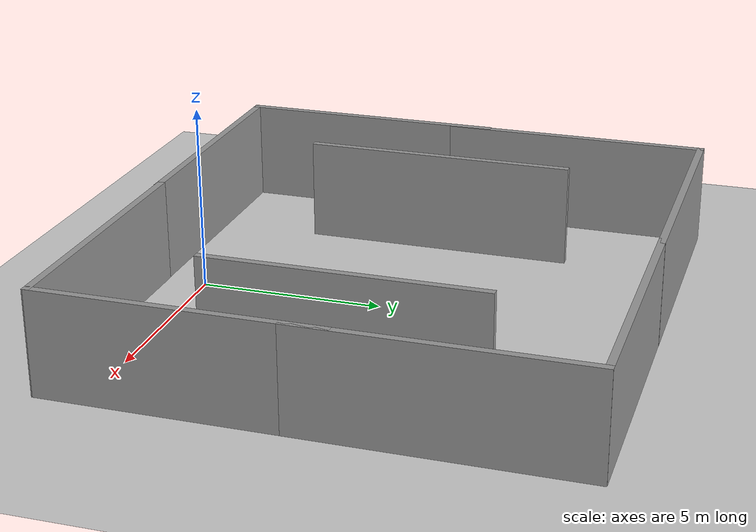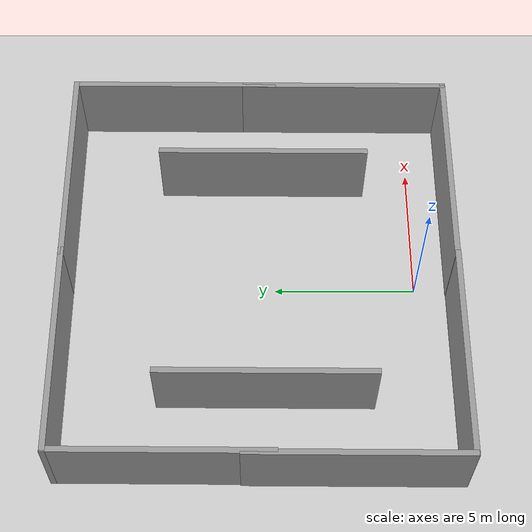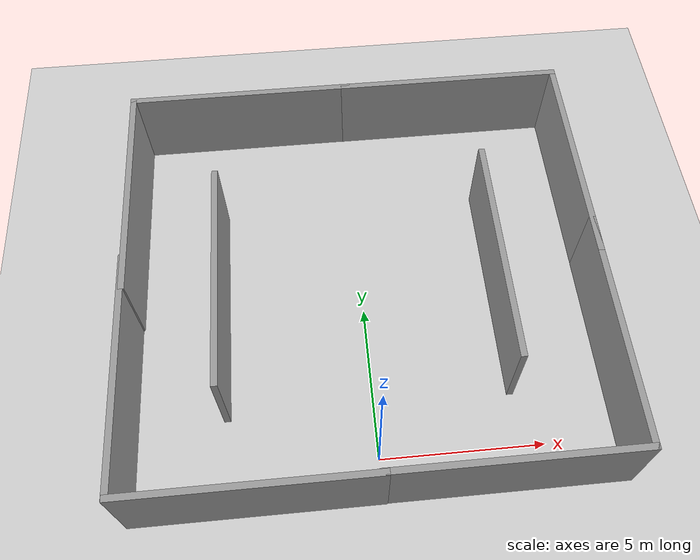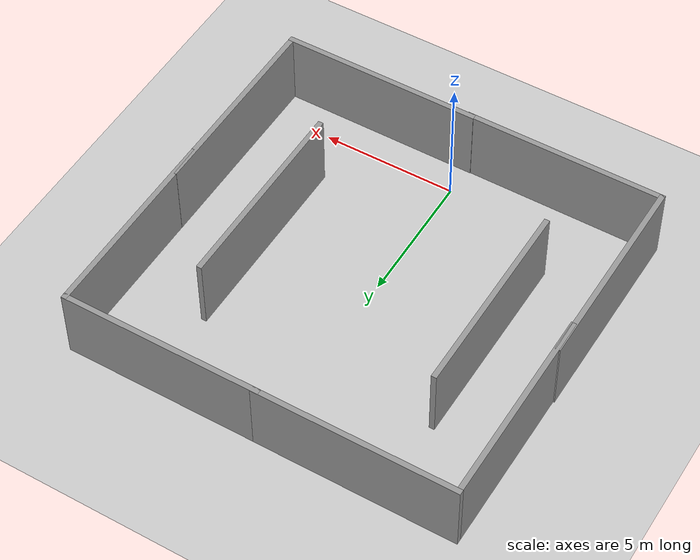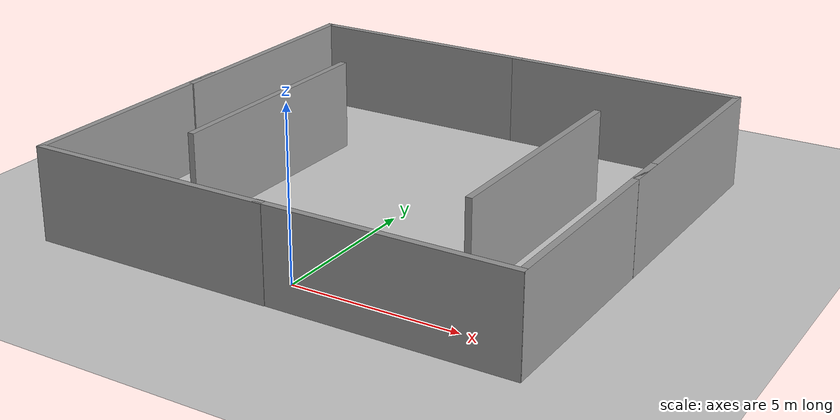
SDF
<sdf version="1.6">
 <world name="default">
  <light name="sun" type="directional">
   <pose>0 0 10 0 -0 0</pose>
   <diffuse>0.8 0.8 0.8 1</diffuse>
   <specular>0.2 0.2 0.2 1</specular>
   <attenuation>
    <range>1000</range>
    <constant>0.9</constant>
    <linear>0.01</linear>
    <quadratic>0.001</quadratic>
   </attenuation>
   <direction>-0.5 0.1 -0.9</direction>
  </light>
  <model name="ground_plane">
   <static>1</static>
   <link name="link">
    <collision name="collision">
     <geometry><plane><normal>0 0 1</normal><size>100 100</size></plane></geometry>
     <surface>
      <contact><collide_bitmask>65535</collide_bitmask></contact>
      <friction><ode><mu>100</mu><mu2>50</mu2></ode></friction>
     </surface>
    </collision>
    <visual name="visual">
     <cast_shadows>0</cast_shadows>
     <geometry><plane><normal>0 0 1</normal><size>100 100</size></plane></geometry>
     <material>
      <script><uri>file://media/materials/scripts/gazebo.material</uri><name>Gazebo/Grey</name></script>
     </material>
    </visual>
   </link>
  </model>
  <gravity>0 0 -9.8</gravity>
  <magnetic_field>6e-06 2.3e-05 -4.2e-05</magnetic_field>
  <atmosphere type="adiabatic"/>
  <physics name="default_physics" default="0" type="ode">
   <max_step_size>0.001</max_step_size>
   <real_time_factor>1</real_time_factor>
   <real_time_update_rate>1000</real_time_update_rate>
  </physics>
  <scene><ambient>0.4 0.4 0.4 1</ambient><background>0.7 0.7 0.7 1</background><shadows>1</shadows></scene>
  <spherical_coordinates>
   <surface_model>EARTH_WGS84</surface_model>
   <latitude_deg>0</latitude_deg>
   <longitude_deg>0</longitude_deg>
   <elevation>0</elevation>
   <heading_deg>0</heading_deg>
  </spherical_coordinates>
  <model name="grey_wall">
   <static>1</static>
   <link name="link">
    <pose>0 0 1.4 0 -0 0</pose>
    <collision name="collision"><geometry><box><size>7.5 0.2 2.8</size></box></geometry></collision>
    <visual name="visual">
     <cast_shadows>0</cast_shadows>
     <geometry><box><size>7.5 0.2 2.8</size></box></geometry>
     <material>
      <script>
       <uri>model://grey_wall/materials/scripts</uri>
       <uri>model://grey_wall/materials/textures</uri>
       <name>vrc/grey_wall</name>
      </script>
     </material>
    </visual>
   </link>
   <pose>-3.64971 -1.23578 0 0 -0 0</pose>
  </model>
  <model name="grey_wall_0">
   <static>1</static>
   <link name="link">
    <pose>0 0 1.4 0 -0 0</pose>
    <collision name="collision"><geometry><box><size>7.5 0.2 2.8</size></box></geometry></collision>
    <visual name="visual">
     <cast_shadows>0</cast_shadows>
     <geometry><box><size>7.5 0.2 2.8</size></box></geometry>
     <material>
      <script>
       <uri>model://grey_wall/materials/scripts</uri>
       <uri>model://grey_wall/materials/textures</uri>
       <name>vrc/grey_wall</name>
      </script>
     </material>
    </visual>
   </link>
   <pose>3.57651 -1.2198 0 0 -0 0</pose>
  </model>
  <model name="grey_wall_1">
   <static>1</static>
   <link name="link">
    <pose>0 0 1.4 0 -0 0</pose>
    <collision name="collision"><geometry><box><size>7.5 0.2 2.8</size></box></geometry></collision>
    <visual name="visual">
     <cast_shadows>0</cast_shadows>
     <geometry><box><size>7.5 0.2 2.8</size></box></geometry>
     <material>
      <script>
       <uri>model://grey_wall/materials/scripts</uri>
       <uri>model://grey_wall/materials/textures</uri>
       <name>vrc/grey_wall</name>
      </script>
     </material>
    </visual>
   </link>
   <pose>-7.2877 2.43127 0 0 0 -1.57646</pose>
  </model>
  <model name="grey_wall_1_clone">
   <static>1</static>
   <link name="link">
    <pose>0 0 1.4 0 -0 0</pose>
    <collision name="collision"><geometry><box><size>7.5 0.2 2.8</size></box></geometry></collision>
    <visual name="visual">
     <cast_shadows>0</cast_shadows>
     <geometry><box><size>7.5 0.2 2.8</size></box></geometry>
     <material>
      <script>
       <uri>model://grey_wall/materials/scripts</uri>
       <uri>model://grey_wall/materials/textures</uri>
       <name>vrc/grey_wall</name>
      </script>
     </material>
    </visual>
   </link>
   <pose>7.24968 2.45857 0 0 0 -1.57646</pose>
  </model>
  <model name="grey_wall_1_clone_0">
   <static>1</static>
   <link name="link">
    <pose>0 0 1.4 0 -0 0</pose>
    <collision name="collision"><geometry><box><size>7.5 0.2 2.8</size></box></geometry></collision>
    <visual name="visual">
     <cast_shadows>0</cast_shadows>
     <geometry><box><size>7.5 0.2 2.8</size></box></geometry>
     <material>
      <script>
       <uri>model://grey_wall/materials/scripts</uri>
       <uri>model://grey_wall/materials/textures</uri>
       <name>vrc/grey_wall</name>
      </script>
     </material>
    </visual>
   </link>
   <pose>-7.20875 8.72088 0 0 0 -1.57646</pose>
  </model>
  <model name="grey_wall_1_clone_1">
   <static>1</static>
   <link name="link">
    <pose>0 0 1.4 0 -0 0</pose>
    <collision name="collision"><geometry><box><size>7.5 0.2 2.8</size></box></geometry></collision>
    <visual name="visual">
     <cast_shadows>0</cast_shadows>
     <geometry><box><size>7.5 0.2 2.8</size></box></geometry>
     <material>
      <script>
       <uri>model://grey_wall/materials/scripts</uri>
       <uri>model://grey_wall/materials/textures</uri>
       <name>vrc/grey_wall</name>
      </script>
     </material>
    </visual>
   </link>
   <pose>7.28755 8.72411 0 0 0 -1.57646</pose>
  </model>
  <model name="grey_wall_2">
   <static>1</static>
   <link name="link">
    <pose>0 0 1.4 0 -0 0</pose>
    <collision name="collision"><geometry><box><size>7.5 0.2 2.8</size></box></geometry></collision>
    <visual name="visual">
     <cast_shadows>0</cast_shadows>
     <geometry><box><size>7.5 0.2 2.8</size></box></geometry>
     <material>
      <script>
       <uri>model://grey_wall/materials/scripts</uri>
       <uri>model://grey_wall/materials/textures</uri>
       <name>vrc/grey_wall</name>
      </script>
     </material>
    </visual>
   </link>
   <pose>-3.53879 12.3797 0 0 -0 0</pose>
  </model>
  <model name="grey_wall_3">
   <static>1</static>
   <link name="link">
    <pose>0 0 1.4 0 -0 0</pose>
    <collision name="collision"><geometry><box><size>7.5 0.2 2.8</size></box></geometry></collision>
    <visual name="visual">
     <cast_shadows>0</cast_shadows>
     <geometry><box><size>7.5 0.2 2.8</size></box></geometry>
     <material>
      <script>
       <uri>model://grey_wall/materials/scripts</uri>
       <uri>model://grey_wall/materials/textures</uri>
       <name>vrc/grey_wall</name>
      </script>
     </material>
    </visual>
   </link>
   <pose>3.6574 12.3756 0 0 -0 0</pose>
  </model>
  <model name="grey_wall_1_clone_2">
   <static>1</static>
   <link name="link">
    <pose>0 0 1.4 0 -0 0</pose>
    <collision name="collision"><geometry><box><size>7.5 0.2 2.8</size></box></geometry></collision>
    <visual name="visual">
     <cast_shadows>0</cast_shadows>
     <geometry><box><size>7.5 0.2 2.8</size></box></geometry>
     <material>
      <script>
       <uri>model://grey_wall/materials/scripts</uri>
       <uri>model://grey_wall/materials/textures</uri>
       <name>vrc/grey_wall</name>
      </script>
     </material>
    </visual>
   </link>
   <pose>-4.47102 5.35791 0 0 0 -1.57646</pose>
  </model>
  <model name="grey_wall_1_clone_3">
   <static>1</static>
   <link name="link">
    <pose>0 0 1.4 0 -0 0</pose>
    <collision name="collision"><geometry><box><size>7.5 0.2 2.8</size></box></geometry></collision>
    <visual name="visual">
     <cast_shadows>0</cast_shadows>
     <geometry><box><size>7.5 0.2 2.8</size></box></geometry>
     <material>
      <script>
       <uri>model://grey_wall/materials/scripts</uri>
       <uri>model://grey_wall/materials/textures</uri>
       <name>vrc/grey_wall</name>
      </script>
     </material>
    </visual>
   </link>
   <pose>4.26041 5.4387 0 0 0 -1.57646</pose>
  </model>
 </world>
</sdf>
